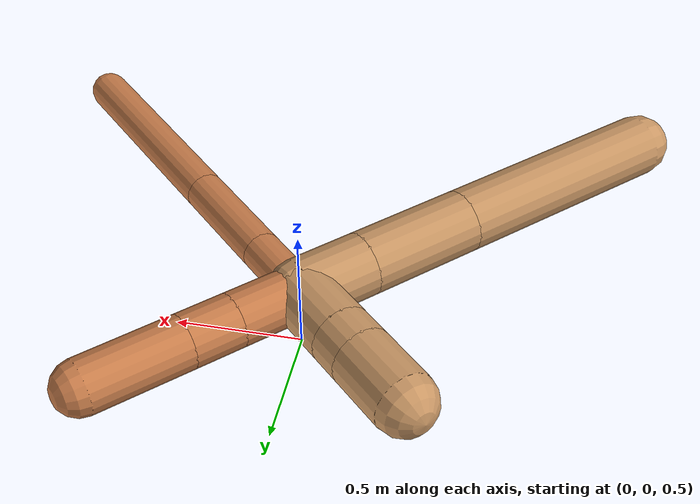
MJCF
<?xml version="1.0" ?>
<mujoco model="ant">

	<compiler angle="degree" coordinate="local" inertiafromgeom="true"/>

	<option integrator="RK4" timestep="0.01"/>

	<custom>

		<numeric data="0.0 0.0 0.55 1.0 0.0 0.0 0.0 0.0 1.0 0.0 -1.0 0.0 -1.0 0.0 1.0" name="init_qpos"/>

	</custom>

	<default>

		<joint armature="1" damping="1" limited="true"/>

		<geom conaffinity="0" condim="3" density="5.0" friction="1.5 0.1 0.1" margin="0.01" rgba="0.8 0.6 0.4 1"/>

	</default>

	<worldbody>

		<body name="torso" pos="0 0 0.75">

			<geom name="torso_geom" pos="0 0 0" size="0.11531827253217702" type="sphere"/>

			<!--joint armature="0" damping="0" limited="false" margin="0.01" name="root" pos="0 0 0" type="free"/-->

			<body name="front_left_leg" pos="0 0 0">

				<geom fromto="0 0 0 0.2 0.2 0" name="aux_1_geom" size="0.10727408717286585" type="capsule" rgba=".8 .5 .3 1"/>

				<body name="aux_1" pos="0.2 0.2 0">

					<joint axis="0 0 1" name="hip_1" pos="0.0 0.0 0.0" range="-40 40" type="hinge"/>

					<geom fromto="0 0 0 0.14284067953084426 0.14284067953084426 0" name="left_leg_geom" size="0.10727408717286585" type="capsule" rgba=".8 .5 .3 1"/>

					<body pos="0.14284067953084426 0.14284067953084426 0" name="front_left_foot">

						<joint axis="-1 1 0" name="ankle_1" pos="0.0 0.0 0.0" range="30 100" type="hinge"/>

						<geom fromto="0 0 0 0.2856813590616885 0.2856813590616885 0" name="left_ankle_geom" size="0.10727408717286585" type="capsule" rgba=".8 .5 .3 1"/>

					</body>

				</body>

			</body>

			<body name="front_right_leg" pos="0 0 0">

				<geom fromto="0 0 0 -0.2 0.2 0" name="aux_2_geom" size="0.12544706892537988" type="capsule"/>

				<body name="aux_2" pos="-0.2 0.2 0">

					<joint axis="0 0 1" name="hip_2" pos="0.0 0.0 0.0" range="-40 40" type="hinge"/>

					<geom fromto="0 0 0 -0.09293618850761994 0.09293618850761994 0" name="right_leg_geom" size="0.12544706892537988" type="capsule"/>

					<body pos="-0.09293618850761994 0.09293618850761994 0" name="front_right_foot">

						<joint axis="1 1 0" name="ankle_2" pos="0.0 0.0 0.0" range="-100 -30" type="hinge"/>

						<geom fromto="0 0 0 -0.18587237701523987 0.18587237701523987 0" name="right_ankle_geom" size="0.12544706892537988" type="capsule"/>

					</body>

				</body>

			</body>

			<body name="left_back_leg" pos="0 0 0">

				<geom fromto="0 0 0 -0.2 -0.2 0" name="aux_3_geom" size="0.12803010949283944" type="capsule"/>

				<body name="aux_3" pos="-0.2 -0.2 0">

					<joint axis="0 0 1" name="hip_3" pos="0.0 0.0 0.0" range="-40 40" type="hinge"/>

					<geom fromto="0 0 0 -0.33506235532971673 -0.33506235532971673 0" name="back_leg_geom" size="0.12803010949283944" type="capsule"/>

					<body pos="-0.33506235532971673 -0.33506235532971673 0" name="left_back_foot">

						<joint axis="-1 1 0" name="ankle_3" pos="0.0 0.0 0.0" range="-100 -30" type="hinge"/>

						<geom fromto="0 0 0 -0.6701247106594335 -0.6701247106594335 0" name="third_ankle_geom" size="0.12803010949283944" type="capsule"/>

					</body>

				</body>

			</body>

			<body name="right_back_leg" pos="0 0 0">

				<geom fromto="0 0 0 0.2 -0.2 0" name="aux_4_geom" size="0.07953438007875123" type="capsule" rgba=".8 .5 .3 1"/>

				<body name="aux_4" pos="0.2 -0.2 0">

					<joint axis="0 0 1" name="hip_4" pos="0.0 0.0 0.0" range="-40 40" type="hinge"/>

					<geom fromto="0 0 0 0.3225753445583467 -0.3225753445583467 0" name="rightback_leg_geom" size="0.07953438007875123" type="capsule" rgba=".8 .5 .3 1"/>

					<body pos="0.3225753445583467 -0.3225753445583467 0" name="right_back_foot">

						<joint axis="1 1 0" name="ankle_4" pos="0.0 0.0 0.0" range="30 100" type="hinge"/>

						<geom fromto="0 0 0 0.6451506891166934 -0.6451506891166934 0" name="fourth_ankle_geom" size="0.07953438007875123" type="capsule" rgba=".8 .5 .3 1"/>

					</body>

				</body>

			</body>

		</body>

	</worldbody>

	<actuator>

		<motor ctrllimited="true" ctrlrange="-1.0 1.0" joint="hip_4" gear="150"/>

		<motor ctrllimited="true" ctrlrange="-1.0 1.0" joint="ankle_4" gear="150"/>

		<motor ctrllimited="true" ctrlrange="-1.0 1.0" joint="hip_1" gear="150"/>

		<motor ctrllimited="true" ctrlrange="-1.0 1.0" joint="ankle_1" gear="150"/>

		<motor ctrllimited="true" ctrlrange="-1.0 1.0" joint="hip_2" gear="150"/>

		<motor ctrllimited="true" ctrlrange="-1.0 1.0" joint="ankle_2" gear="150"/>

		<motor ctrllimited="true" ctrlrange="-1.0 1.0" joint="hip_3" gear="150"/>

		<motor ctrllimited="true" ctrlrange="-1.0 1.0" joint="ankle_3" gear="150"/>

	</actuator>

</mujoco>
